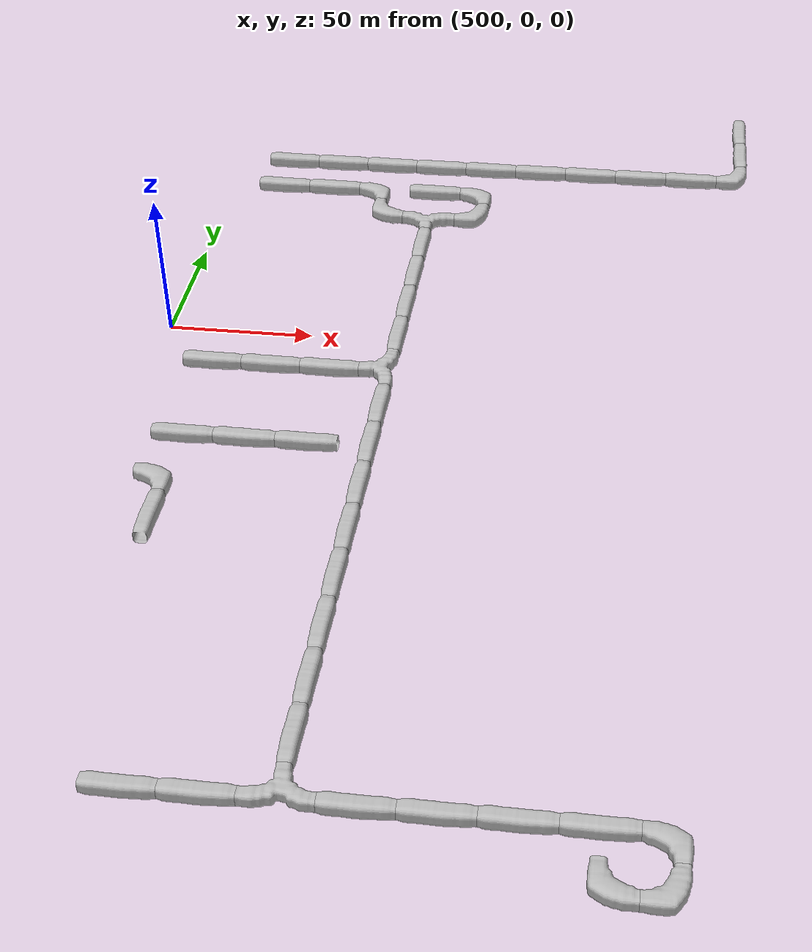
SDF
<sdf version="1.6">
 <world name="cave_16000">
  <include>
   <static>true</static>
   <name>cave_26_-1</name>
   <pose>520 -20 0 0 0 1.5707963267948966</pose>
   <uri>model://cave_straight_20m</uri>
  </include>
  <include>
   <static>true</static>
   <name>cave_27_-1</name>
   <pose>540 -20 0 0 0 1.5707963267948966</pose>
   <uri>model://cave_straight_20m</uri>
  </include>
  <include>
   <static>true</static>
   <name>cave_28_-1</name>
   <pose>560 -20 0 0 0 1.5707963267948966</pose>
   <uri>model://cave_straight_20m</uri>
  </include>
  <include>
   <static>true</static>
   <name>cave_29_-1</name>
   <pose>580 -20 0 0 0 1.5707963267948966</pose>
   <uri>model://cave_3way_20m</uri>
  </include>
  <include>
   <static>true</static>
   <name>cave_29_-2</name>
   <pose>580 -40 0 0 0 0.0</pose>
   <uri>model://cave_straight_20m</uri>
  </include>
  <include>
   <static>true</static>
   <name>cave_29_-3</name>
   <pose>580 -60 0 0 0 0.0</pose>
   <uri>model://cave_straight_20m</uri>
  </include>
  <include>
   <static>true</static>
   <name>cave_29_-4</name>
   <pose>580 -80 0 0 0 0.0</pose>
   <uri>model://cave_straight_20m</uri>
  </include>
  <include>
   <static>true</static>
   <name>cave_29_-5</name>
   <pose>580 -100 0 0 0 0.0</pose>
   <uri>model://cave_straight_20m</uri>
  </include>
  <include>
   <static>true</static>
   <name>cave_29_-6</name>
   <pose>580 -120 0 0 0 0.0</pose>
   <uri>model://cave_straight_20m</uri>
  </include>
  <include>
   <static>true</static>
   <name>cave_29_-7</name>
   <pose>580 -140 0 0 0 0.0</pose>
   <uri>model://cave_straight_20m</uri>
  </include>
  <include>
   <static>true</static>
   <name>cave_29_-8</name>
   <pose>580 -160 0 0 0 0.0</pose>
   <uri>model://cave_straight_20m</uri>
  </include>
  <include>
   <static>true</static>
   <name>cave_29_-9</name>
   <pose>580 -180 0 0 0 0.0</pose>
   <uri>model://cave_straight_20m</uri>
  </include>
  <include>
   <static>true</static>
   <name>cave_29_-10</name>
   <pose>580 -200 0 0 0 0.0</pose>
   <uri>model://cave_3way_20m</uri>
  </include>
  <include>
   <static>true</static>
   <name>cave_30_-10</name>
   <pose>600 -200 0 0 0 1.5707963267948966</pose>
   <uri>model://cave_straight_20m</uri>
  </include>
  <include>
   <static>true</static>
   <name>cave_31_-10</name>
   <pose>620 -200 0 0 0 1.5707963267948966</pose>
   <uri>model://cave_straight_20m</uri>
  </include>
  <include>
   <static>true</static>
   <name>cave_32_-10</name>
   <pose>640 -200 0 0 0 1.5707963267948966</pose>
   <uri>model://cave_straight_20m</uri>
  </include>
  <include>
   <static>true</static>
   <name>cave_33_-10</name>
   <pose>660 -200 0 0 0 1.5707963267948966</pose>
   <uri>model://cave_straight_20m</uri>
  </include>
  <include>
   <static>true</static>
   <name>cave_34_-10</name>
   <pose>680 -200 0 0 0 3.141592653589793</pose>
   <uri>model://cave_L_20m</uri>
  </include>
  <include>
   <static>true</static>
   <name>cave_34_-11</name>
   <pose>680 -220 0 0 0 1.5707963267948966</pose>
   <uri>model://cave_L_20m</uri>
  </include>
  <include>
   <static>true</static>
   <name>cave_33_-11</name>
   <pose>660 -220 0 0 0 0.0</pose>
   <uri>model://cave_L_20m</uri>
  </include>
  <include>
   <static>true</static>
   <name>cave_28_-10</name>
   <pose>560 -200 0 0 0 1.5707963267948966</pose>
   <uri>model://cave_straight_20m</uri>
  </include>
  <include>
   <static>true</static>
   <name>cave_27_-10</name>
   <pose>540 -200 0 0 0 1.5707963267948966</pose>
   <uri>model://cave_straight_20m</uri>
  </include>
  <include>
   <static>true</static>
   <name>cave_26_-5</name>
   <pose>520 -100 0 0 0 0.0</pose>
   <uri>model://cave_straight_20m</uri>
  </include>
  <include>
   <static>true</static>
   <name>cave_26_-4</name>
   <pose>520 -80 0 0 0 3.141592653589793</pose>
   <uri>model://cave_L_20m</uri>
  </include>
  <include>
   <static>true</static>
   <name>cave_26_-3</name>
   <pose>520 -60 0 0 0 1.5707963267948966</pose>
   <uri>model://cave_straight_20m</uri>
  </include>
  <include>
   <static>true</static>
   <name>cave_27_-3</name>
   <pose>540 -60 0 0 0 1.5707963267948966</pose>
   <uri>model://cave_straight_20m</uri>
  </include>
  <include>
   <static>true</static>
   <name>cave_28_-3</name>
   <pose>560 -60 0 0 0 1.5707963267948966</pose>
   <uri>model://cave_straight_20m</uri>
  </include>
  <include>
   <static>true</static>
   <name>cave_29_0</name>
   <pose>580 0 0 0 0 0.0</pose>
   <uri>model://cave_straight_20m</uri>
  </include>
  <include>
   <static>true</static>
   <name>cave_29_1</name>
   <pose>580 20 0 0 0 0.0</pose>
   <uri>model://cave_straight_20m</uri>
  </include>
  <include>
   <static>true</static>
   <name>cave_29_2</name>
   <pose>580 40 0 0 0 0.0</pose>
   <uri>model://cave_straight_20m</uri>
  </include>
  <include>
   <static>true</static>
   <name>cave_29_3</name>
   <pose>580 60 0 0 0 0.0</pose>
   <uri>model://cave_straight_20m</uri>
  </include>
  <include>
   <static>true</static>
   <name>cave_29_4</name>
   <pose>580 80 0 0 0 3.141592653589793</pose>
   <uri>model://cave_3way_20m</uri>
  </include>
  <include>
   <static>true</static>
   <name>cave_30_4</name>
   <pose>600 80 0 0 0 1.5707963267948966</pose>
   <uri>model://cave_L_20m</uri>
  </include>
  <include>
   <static>true</static>
   <name>cave_30_5</name>
   <pose>600 100 0 0 0 3.141592653589793</pose>
   <uri>model://cave_L_20m</uri>
  </include>
  <include>
   <static>true</static>
   <name>cave_29_5</name>
   <pose>580 100 0 0 0 1.5707963267948966</pose>
   <uri>model://cave_straight_20m</uri>
  </include>
  <include>
   <static>true</static>
   <name>cave_28_4</name>
   <pose>560 80 0 0 0 0.0</pose>
   <uri>model://cave_L_20m</uri>
  </include>
  <include>
   <static>true</static>
   <name>cave_28_5</name>
   <pose>560 100 0 0 0 3.141592653589793</pose>
   <uri>model://cave_L_20m</uri>
  </include>
  <include>
   <static>true</static>
   <name>cave_27_5</name>
   <pose>540 100 0 0 0 1.5707963267948966</pose>
   <uri>model://cave_straight_20m</uri>
  </include>
  <include>
   <static>true</static>
   <name>cave_26_5</name>
   <pose>520 100 0 0 0 1.5707963267948966</pose>
   <uri>model://cave_straight_20m</uri>
  </include>
  <include>
   <static>true</static>
   <name>cave_26_6</name>
   <pose>520 120 0 0 0 1.5707963267948966</pose>
   <uri>model://cave_straight_20m</uri>
  </include>
  <include>
   <static>true</static>
   <name>cave_27_6</name>
   <pose>540 120 0 0 0 1.5707963267948966</pose>
   <uri>model://cave_straight_20m</uri>
  </include>
  <include>
   <static>true</static>
   <name>cave_28_6</name>
   <pose>560 120 0 0 0 1.5707963267948966</pose>
   <uri>model://cave_straight_20m</uri>
  </include>
  <include>
   <static>true</static>
   <name>cave_29_6</name>
   <pose>580 120 0 0 0 1.5707963267948966</pose>
   <uri>model://cave_straight_20m</uri>
  </include>
  <include>
   <static>true</static>
   <name>cave_30_6</name>
   <pose>600 120 0 0 0 1.5707963267948966</pose>
   <uri>model://cave_straight_20m</uri>
  </include>
  <include>
   <static>true</static>
   <name>cave_31_6</name>
   <pose>620 120 0 0 0 1.5707963267948966</pose>
   <uri>model://cave_straight_20m</uri>
  </include>
  <include>
   <static>true</static>
   <name>cave_32_6</name>
   <pose>640 120 0 0 0 1.5707963267948966</pose>
   <uri>model://cave_straight_20m</uri>
  </include>
  <include>
   <static>true</static>
   <name>cave_33_6</name>
   <pose>660 120 0 0 0 1.5707963267948966</pose>
   <uri>model://cave_straight_20m</uri>
  </include>
  <include>
   <static>true</static>
   <name>cave_34_6</name>
   <pose>680 120 0 0 0 1.5707963267948966</pose>
   <uri>model://cave_straight_20m</uri>
  </include>
  <include>
   <static>true</static>
   <name>cave_35_6</name>
   <pose>700 120 0 0 0 1.5707963267948966</pose>
   <uri>model://cave_L_20m</uri>
  </include>
  <include>
   <static>true</static>
   <name>cave_35_7</name>
   <pose>700 140 0 0 0 0.0</pose>
   <uri>model://cave_straight_20m</uri>
  </include>
  <include>
   <static>true</static>
   <name>cave_35_8</name>
   <pose>700 160 0 0 0 0.0</pose>
   <uri>model://cave_straight_20m</uri>
  </include>
 </world>
</sdf>
